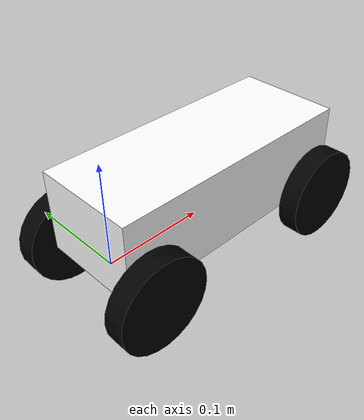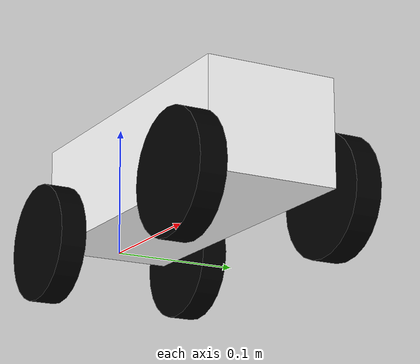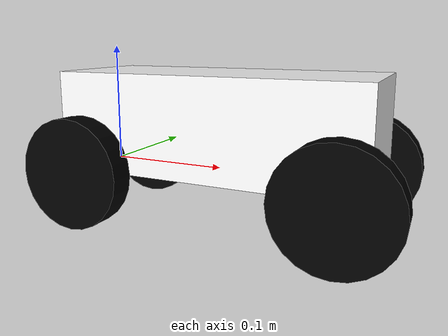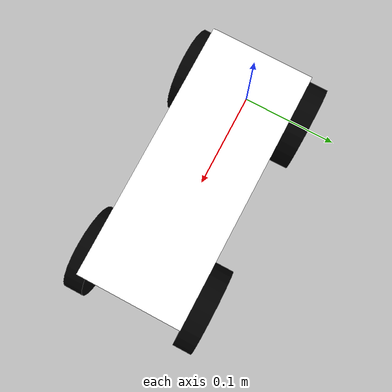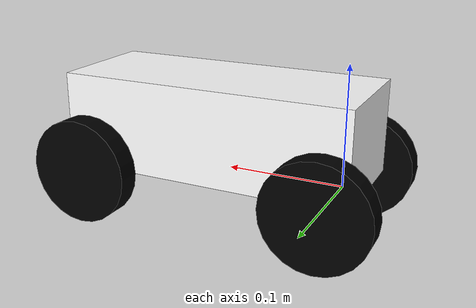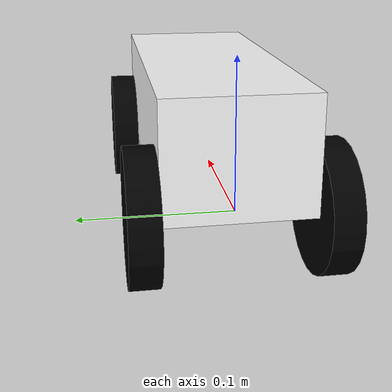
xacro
<?xml version="1.0"?>
<robot xmlns:xacro="http://www.ros.org/wiki/xacro" name="robot">
    <xacro:include filename="inertial_macros.xacros"/>

    <material name='white'>
        <color rgba='1 1 1 1'/>

    </material>

    <material name='black'>
        <color rgba='0 0 0 1'/>

    </material>

    <material name='blue'>
        <color rgba='0.2 0.2 1 1'/>

    </material>
     <material name='orange'>
        <color rgba='1 0.3 0.1 1'/>

    </material>

    <link name="base_link">

    </link>

    <joint name="chassis_joint" type="fixed">
        <parent link="base_link"/>
        <child  link="chassis"/>
        <origin xyz="-0.02 0 0"/>

    </joint>

    <link name="chassis">
        <visual>
            <origin xyz='0.125 0 0.04'/>
            <geometry>
                <box size="0.25 0.10 0.08"/>
            </geometry>
            <material name="white"/>
        </visual>

        <xacro:inertial_box mass= "0.3" x="0.25" y="0.10" z="0.08">
            <origin xyz= "0.125 0 0.04" rpy="0 0 0"/>
        </xacro:inertial_box>

    </link>

    <joint name= "left_backwheel_ joint" type='continuous'>
        <parent link="base_link"/>
        <child link= "left_backwheel"/>
        <origin xyz="0 0.06 0" rpy="-${pi/2} 0 0"/>
        <axis xyz="0 0 1"/>
    </joint>

    <link name="left_backwheel">
        <visual>
            <geometry>
                <cylinder radius="0.045" length="0.02"/>
            </geometry>
            <material name="black"/>
        </visual>
        <collision>
            <geometry>
                <cylinder radius="0.045" length="0.02"/>
            </geometry>
            <material name="black"/>
        </collision>

        <xacro:inertial_cylinder mass="0.03" length="0.02" radius="0.045">
            <origin xyz= "0 0 0" rpy= "0 0 0"/>
        </xacro:inertial_cylinder>

    </link>

    <joint name= "right_backwheel_ joint" type='continuous'>
        <parent link="base_link"/>
        <child link= "right_backwheel"/>
        <origin xyz="0 -0.06 0" rpy="${pi/2} 0 0"/>
        <axis xyz="0 0 -1"/>
    </joint>

    <link name="right_backwheel">
        <visual>
            <geometry>
                <cylinder radius="0.045" length="0.02"/>
            </geometry>
            <material name="black"/>
        </visual>

        <collision>
            <geometry>
                <cylinder radius="0.045" length="0.02"/>
            </geometry>
            <material name="black"/>
        </collision>
        <xacro:inertial_cylinder mass="0.03" length="0.02" radius="0.045">
            <origin xyz= "0 0 0" rpy="0 0 0"/>
        </xacro:inertial_cylinder>
    </link>

    <joint name= "left_frontwheel_ joint" type='fixed'>
        <parent link="chassis"/>
        <child link= "left_frontwheel"/>
        <origin xyz="0.23 0.06 0" rpy="-${pi/2} 0 0"/>
        <axis xyz="0 0 1"/>
    </joint>

    <link name="left_frontwheel">
        <visual>
            <geometry>
                <cylinder radius="0.045" length="0.02"/>
            </geometry>
            <material name="black"/>
        </visual>
        <collision>
            <geometry>
                <cylinder radius="0.045" length="0.02"/>
            </geometry>
            <material name="black"/>
        </collision>

        <xacro:inertial_cylinder mass="0.03" length="0.02" radius="0.045">
            <origin xyz= "0 0 0" rpy="0 0 0"/>
        </xacro:inertial_cylinder>
    </link>

    <joint name= "right_frontwheel_ joint" type='fixed'>
        <parent link="chassis"/>
        <child link= "right_frontwheel"/>
        <origin xyz="0.23 -0.06 0" rpy="${pi/2} 0 0"/>
        <axis xyz="0 0 -1"/>
    </joint>

    <link name="right_frontwheel">
        <visual>
            <geometry>
                <cylinder radius="0.045" length="0.02"/>
            </geometry>
            <material name="black"/>
        </visual>

        <collision>
            <geometry>
                <cylinder radius="0.045" length="0.02"/>
            </geometry>
            <material name="black"/>
        </collision>

        <xacro:inertial_cylinder mass="0.03" length="0.02" radius="0.045">
            <origin xyz= "0 0 0" rpy="0 0 0"/>
        </xacro:inertial_cylinder>
    </link>

</robot>
